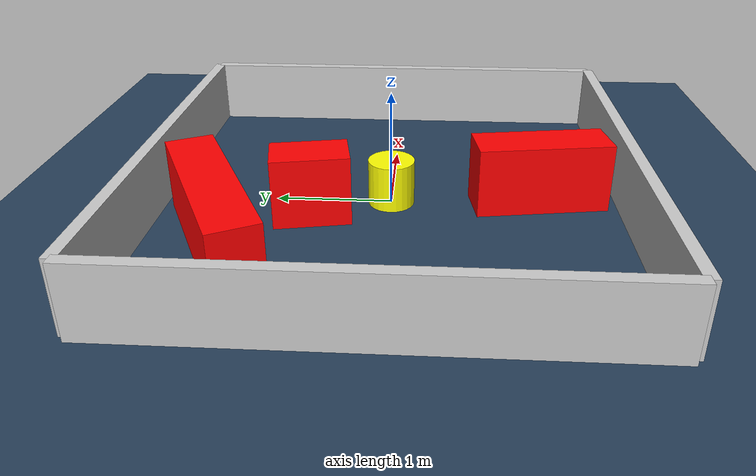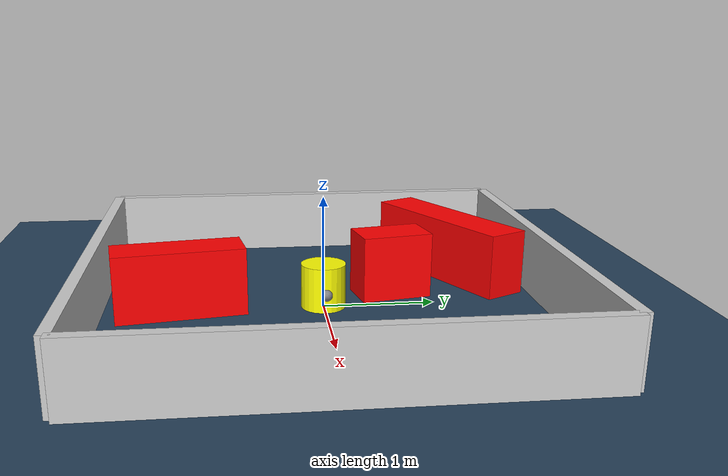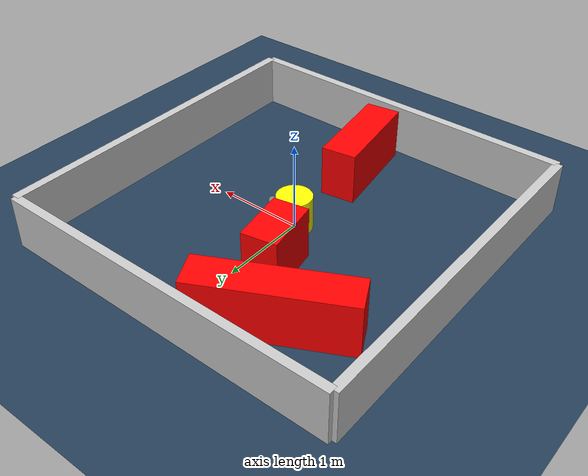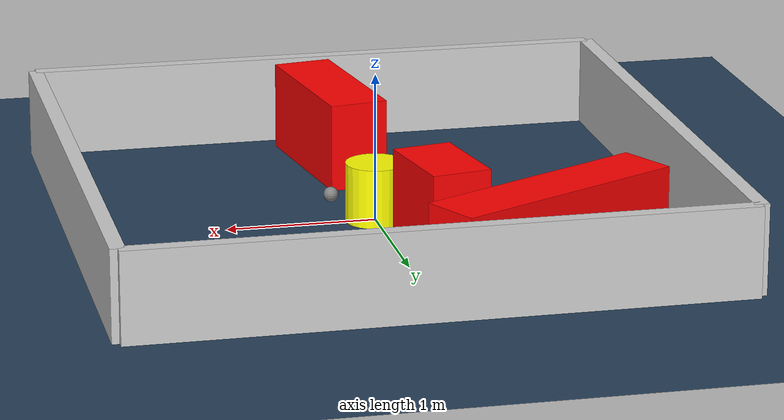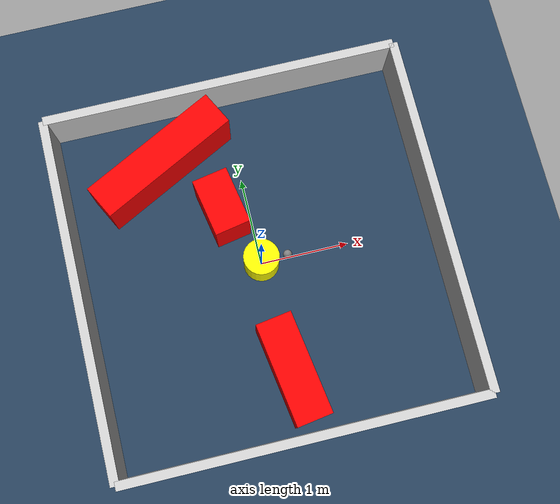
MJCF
<?xml version="1.0" ?>
<mujoco model="generated_environment">
  <option timestep="0.01" integrator="RK4" cone="elliptic"/>
  <default>
    <geom density="1"/>
  </default>
  <asset>
    <texture builtin="gradient" height="3072" rgb1="0.3 0.5 0.7" rgb2="0 0 0" type="skybox" width="512"/>
    <texture builtin="checker" height="300" mark="edge" markrgb="0.8 0.8 0.8" name="groundplane" rgb1="0.2 0.3 0.4" rgb2="0.1 0.2 0.3" type="2d" width="300"/>
    <material name="groundplane" reflectance="0.2" texrepeat="5 5" texture="groundplane" texuniform="true"/>
    <material name="robot" rgba="0.0 1.0 0.0 1"/>
  </asset>
  <worldbody>
    <light dir="0 0 -1" directional="true" pos="0 0 1.5"/>
    <geom condim="4" friction="1.0 0.005 0.001" material="groundplane" name="floor" size="0 0 0.05" type="plane"/>
    <body name="walls">
      <geom name="wall_1" condim="4" pos="-2.0 0.0 0.3" rgba="0.800000011920929 0.800000011920929 0.800000011920929 1.0" size="0.05 2.0 0.3" type="box"/>
      <geom name="wall_2" condim="4" pos="2.0 0.0 0.3" rgba="0.800000011920929 0.800000011920929 0.800000011920929 1.0" size="0.05 2.0 0.3" type="box"/>
      <geom name="wall_3" condim="4" pos="0.0 -2.0 0.3" rgba="0.800000011920929 0.800000011920929 0.800000011920929 1.0" size="2.0 0.05 0.3" type="box"/>
      <geom name="wall_4" condim="4" pos="0.0 2.0 0.3" rgba="0.800000011920929 0.800000011920929 0.800000011920929 1.0" size="2.0 0.05 0.3" type="box"/>
    </body>
    <body name="robot">
      <joint name="joint_x" type="slide" pos="0 0 0" axis="1 0 0"/>
      <joint name="joint_y" type="slide" pos="0 0 0" axis="0 1 0"/>
      <geom name="robot" type="sphere" pos="0.3 0.0 0.2" size="0.05" mass="5." friction="1.0 0.005 0.0001" condim="4" rgba="0.5 0.5 0.5 1.0"/>
      <site name="sensor_ball"/>
    </body>
    <body name="obstacle_movable_1">
      <geom name="obstacle_movable_1" condim="4" pos="0.0 0.0 0.2" euler="0 0 0.0" friction="1.0 0.005 0.001" rgba="1.0 1.0 0.0 1.0" size="0.2 0.2 0.0" type="cylinder" mass="0.1"/>
      <joint type="free"/>
    </body>
    <body name="obstacle_2_static">
      <geom name="obstacle_2_static" condim="4" pos="-0.8358004398991485 1.3297653536154475 0.3" euler="0 0 207.10951096105262" friction="1.0 0.005 0.001" rgba="1 0 0 1" size="0.8372622498496254 0.2 0.3" type="box"/>
    </body>
    <body name="obstacle_3_static">
      <geom name="obstacle_3_static" condim="4" pos="0.04276057456169835 -1.2716233704954618 0.3" euler="0 0 98.71081533184838" friction="1.0 0.005 0.001" rgba="1 0 0 1" size="0.5708243835286761 0.2 0.3" type="box"/>
    </body>
    <body name="obstacle_4_static">
      <geom name="obstacle_4_static" condim="4" pos="-0.2913389724132769 0.6574573458313695 0.3" euler="0 0 100.5385653744798" friction="1.0 0.005 0.001" rgba="1 0 0 1" size="0.32494136834986875 0.2 0.3" type="box"/>
    </body>
  </worldbody>
  <actuator>
    <motor name="actuator_x" joint="joint_x" gear="1" ctrlrange="-1 1"/>
    <motor name="actuator_y" joint="joint_y" gear="1" ctrlrange="-1 1"/>
  </actuator>
</mujoco>
